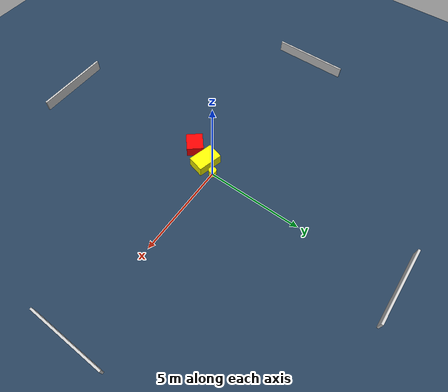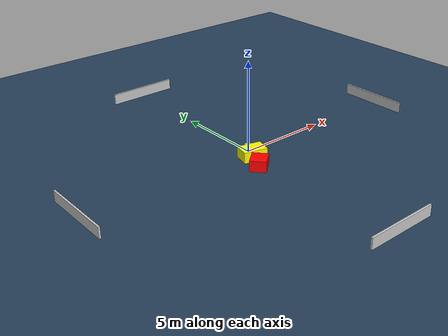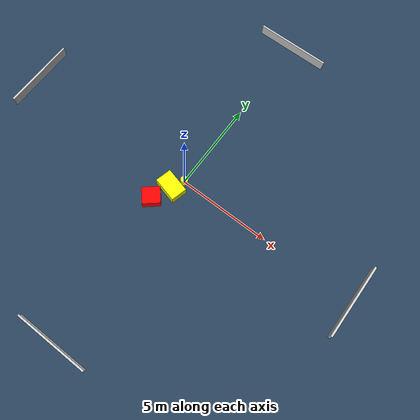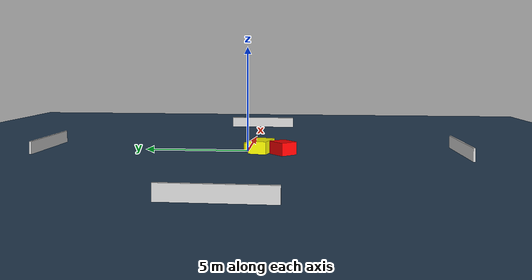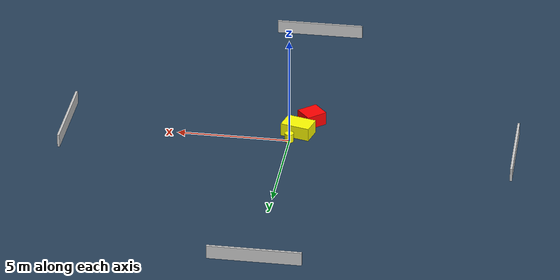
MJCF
<?xml version="1.0" ?>
<mujoco model="generated_environment">
  <option timestep="0.01" integrator="RK4" cone="elliptic"/>
  <default>
    <geom density="1"/>
  </default>
  <asset>
    <texture builtin="gradient" height="3072" name="skybox" rgb1="0.3 0.5 0.7" rgb2="0 0 0" type="skybox" width="512"/>
    <texture builtin="checker" height="300" name="groundplane" rgb1="0.2 0.3 0.4" rgb2="0.1 0.2 0.3" type="2d" width="300"/>
    <material name="groundplane" reflectance="0.2" texrepeat="5 5" texture="groundplane"/>
  </asset>
  <worldbody>
    <light dir="0 0 -1" directional="true" pos="0 0 1.5"/>
    <geom condim="3" friction="0.5 0.005 0.001" material="groundplane" name="floor" pos="0 0 0" size="0 0 0.05" type="plane"/>
    <body name="walls">
      <geom name="wall_1" condim="4" pos="-10.0 0.0 0.3" rgba="0.800000011920929 0.800000011920929 0.800000011920929 1.0" size="0.05 2.0 0.3" type="box"/>
      <geom name="wall_2" condim="4" pos="10.0 0.0 0.3" rgba="0.800000011920929 0.800000011920929 0.800000011920929 1.0" size="0.05 2.0 0.3" type="box"/>
      <geom name="wall_3" condim="4" pos="0.0 -10.0 0.3" rgba="0.800000011920929 0.800000011920929 0.800000011920929 1.0" size="2.0 0.05 0.3" type="box"/>
      <geom name="wall_4" condim="4" pos="0.0 10.0 0.3" rgba="0.800000011920929 0.800000011920929 0.800000011920929 1.0" size="2.0 0.05 0.3" type="box"/>
    </body>
    <body name="robot">
      <joint name="joint_x" type="slide" pos="0 0 0" axis="1 0 0"/>
      <joint name="joint_y" type="slide" pos="0 0 0" axis="0 1 0"/>
      <geom name="robot" type="cylinder" pos="0.0 0.0 0.2" size="0.2 0.2 0.0" mass="5.0" friction="1.0 0.005 0.0001" condim="4" rgba="1.0 1.0 0.0 1.0"/>
    </body>
    <body name="obstacle_1_movable">
      <geom name="obstacle_1_movable" condim="4" pos="-0.3098269070881711 -0.6828112048409711 0.3" euler="0 0 255.34847083957246" friction="0.0 0.005 0.001" rgba="1.0 1.0 0.0 1.0" size="0.434849682028744 0.6604123901141956 0.3" type="box" mass="0.1"/>
      <joint type="free"/>
    </body>
    <body name="obstacle_2_static">
      <geom name="obstacle_2_static" condim="4" pos="-0.7762910495122375 -1.7236776004788599 0.3" euler="0 0 40.47442074383953" friction="0.0 0.005 0.001" rgba="1.0 0.0 0.0 1.0" size="0.4767163037649073 0.43520814695420695 0.3" type="box"/>
    </body>
  </worldbody>
  <actuator>
    <motor name="actuator_x" joint="joint_x" gear="1" ctrlrange="-1 1"/>
    <motor name="actuator_y" joint="joint_y" gear="1" ctrlrange="-1 1"/>
  </actuator>
</mujoco>
